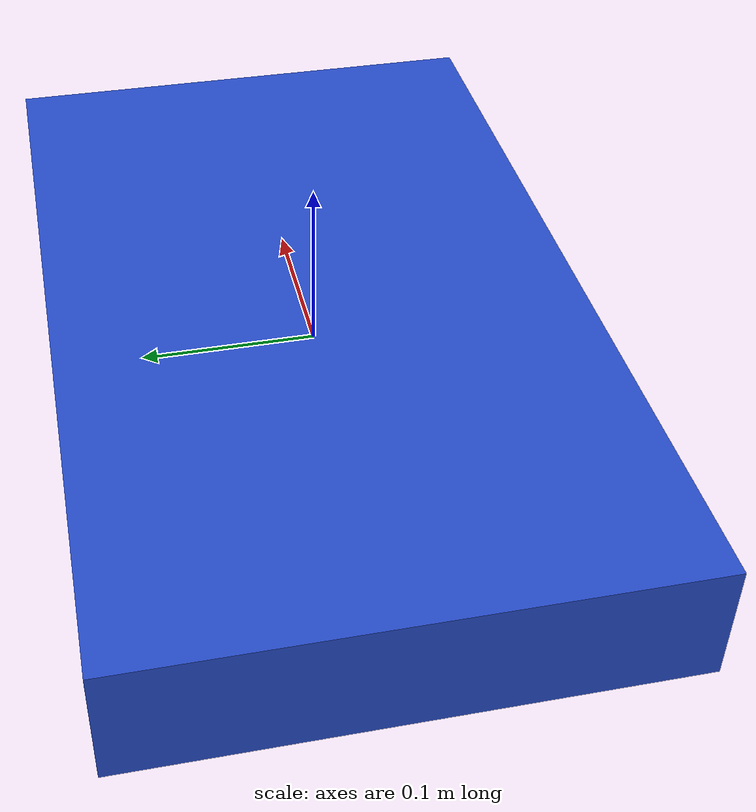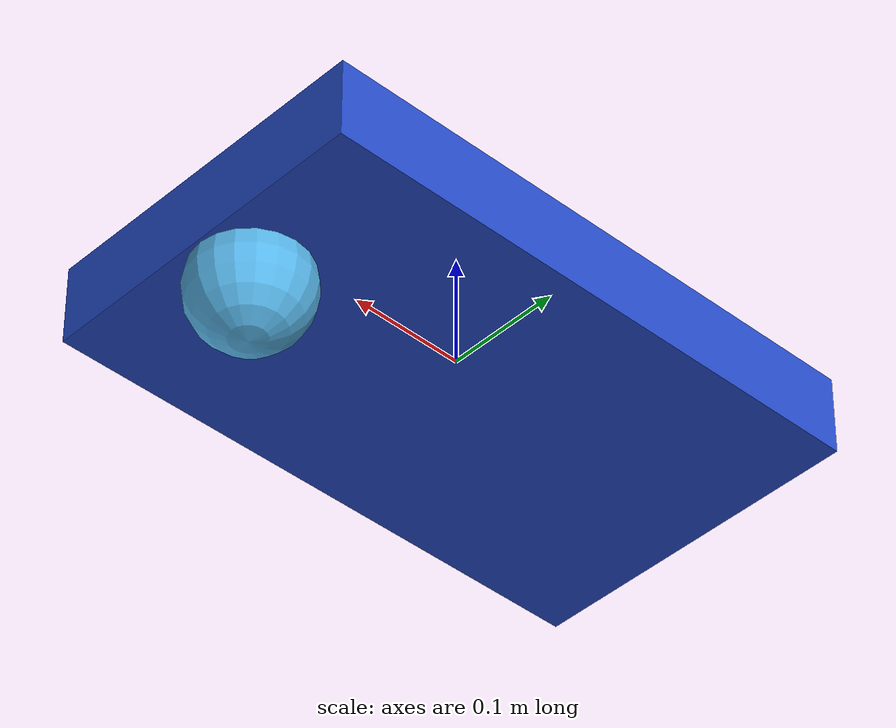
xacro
<?xml version="1.0" ?>
<robot name="name" xmlns:xacro="http://www.ros.org/wiki/xacro">

	<xacro:include filename="materials.xacro" />

	<link name="dummy">
	</link>

	<joint name="dummy_joint" type="fixed" >
		<parent link="dummy" />
		<child link="base_link" />
		<origin xyz="0 0 0" rpy="0 0 0" />
	</joint>

	<link name="base_link">
		<inertial>
			<mass value="5"/>
			<origin rpy="0 0 0" xyz="0 0 0.1"/>
			<inertia ixx="0.0395416666667" ixy="0" ixz="0" iyy="0.106208333333" iyz="0" izz="0.106208333333"/>
		</inertial>

		<collision name="collision_chassis">
			<geometry>
				<box size="0.5 0.3 0.07"/>
			</geometry>
		</collision>

		<!-- caster front -->
		<collision name="caster_front_collision">
			<origin rpy=" 0 0 0" xyz="0.35 0 -0.05"/>
			<geometry>
				<sphere radius="0.05"/>
			</geometry>
			<surface>
				<friction>
					<ode>
						<mu>0</mu>
						<mu2>0</mu2>
						<slip1>1.0</slip1>
						<slip2>1.0</slip2>
					</ode>
				</friction>
			</surface>
		</collision>

		<!-- visual generale -->
		<visual>
			<origin rpy="0 0 0" xyz="0 0 0"/>
			<geometry>
				<box size="0.5 0.3 0.07"/>
			</geometry>
			<material name="blue"/>
		</visual>

		<!-- visual caster front -->
		<visual name="caster_front_visual">
			<origin rpy=" 0 0 0" xyz="0.2 0 -0.05"/>
			<geometry>
				<sphere radius="0.05"/>
			</geometry>
		</visual>
	</link>

</robot>
